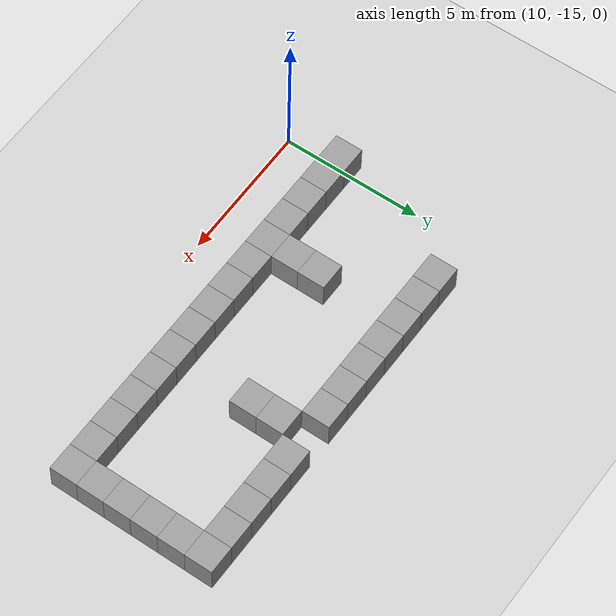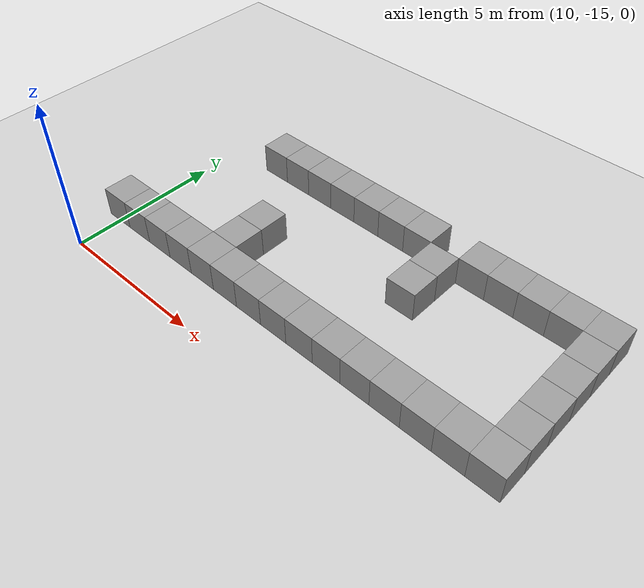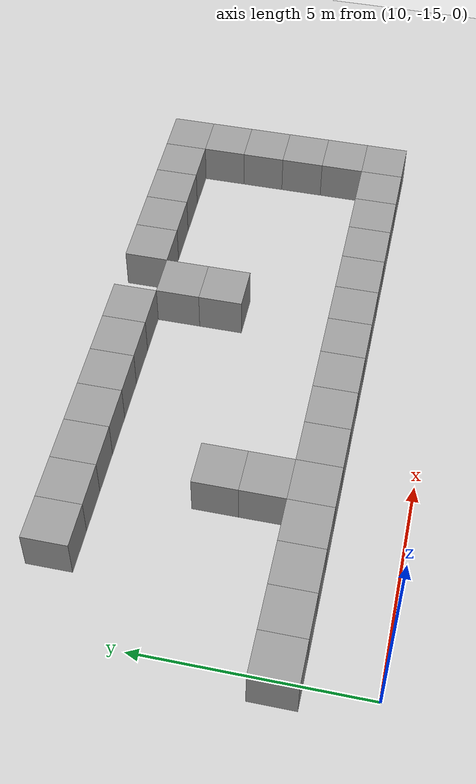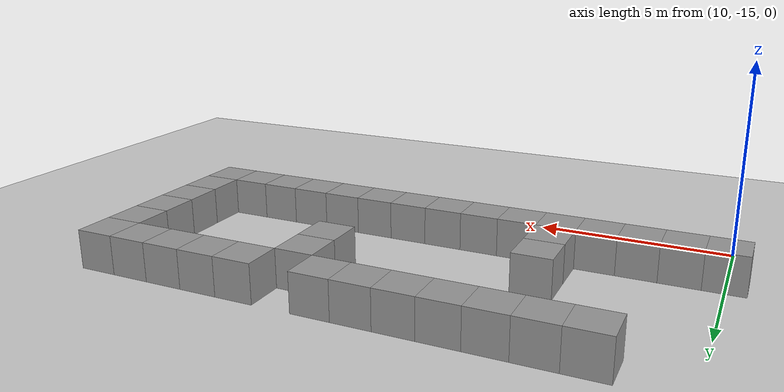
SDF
<sdf version="1.4">
 <world name="default">
  <model name="ground_plane">
   <static>1</static>
   <link name="link">
    <collision name="collision">
     <geometry><plane><normal>0 0 1</normal><size>100 100</size></plane></geometry>
     <surface><friction><ode><mu>100</mu><mu2>50</mu2></ode></friction></surface>
    </collision>
    <visual name="visual">
     <cast_shadows>0</cast_shadows>
     <geometry><plane><normal>0 0 1</normal><size>100 100</size></plane></geometry>
     <material>
      <script><uri>file://media/materials/scripts/gazebo.material</uri><name>Gazebo/Grey</name></script>
     </material>
    </visual>
    <velocity_decay><linear>0</linear><angular>0</angular></velocity_decay>
   </link>
  </model>
  <model name="unit_box_216">
   <pose>24 -8 0.5 -0 -0 -3e-06</pose>
   <link name="link">
    <inertial>
     <mass>1</mass>
     <inertia><ixx>1</ixx><ixy>0</ixy><ixz>0</ixz><iyy>1</iyy><iyz>0</iyz><izz>1</izz></inertia>
    </inertial>
    <collision name="collision"><geometry><box><size>1 1 1</size></box></geometry></collision>
    <visual name="visual">
     <geometry><box><size>1 1 1</size></box></geometry>
     <material>
      <script><uri>file://media/materials/scripts/gazebo.material</uri><name>Gazebo/Grey</name></script>
     </material>
    </visual>
    <velocity_decay><linear>0</linear><angular>0</angular></velocity_decay>
   </link>
   <static>0</static>
  </model>
  <model name="unit_box_217">
   <pose>23 -8 0.5 0 -0 0</pose>
   <link name="link">
    <inertial>
     <mass>1</mass>
     <inertia><ixx>1</ixx><ixy>0</ixy><ixz>0</ixz><iyy>1</iyy><iyz>0</iyz><izz>1</izz></inertia>
    </inertial>
    <collision name="collision"><geometry><box><size>1 1 1</size></box></geometry></collision>
    <visual name="visual">
     <geometry><box><size>1 1 1</size></box></geometry>
     <material>
      <script><uri>file://media/materials/scripts/gazebo.material</uri><name>Gazebo/Grey</name></script>
     </material>
    </visual>
    <velocity_decay><linear>0</linear><angular>0</angular></velocity_decay>
   </link>
   <static>0</static>
  </model>
  <model name="unit_box_218">
   <pose>22 -8.00001 0.5 0 0 -1e-06</pose>
   <link name="link">
    <inertial>
     <mass>1</mass>
     <inertia><ixx>1</ixx><ixy>0</ixy><ixz>0</ixz><iyy>1</iyy><iyz>0</iyz><izz>1</izz></inertia>
    </inertial>
    <collision name="collision"><geometry><box><size>1 1 1</size></box></geometry></collision>
    <visual name="visual">
     <geometry><box><size>1 1 1</size></box></geometry>
     <material>
      <script><uri>file://media/materials/scripts/gazebo.material</uri><name>Gazebo/Grey</name></script>
     </material>
    </visual>
    <velocity_decay><linear>0</linear><angular>0</angular></velocity_decay>
   </link>
   <static>0</static>
  </model>
  <model name="unit_box_219">
   <pose>21 -8 0.5 0 0 -1e-06</pose>
   <link name="link">
    <inertial>
     <mass>1</mass>
     <inertia><ixx>1</ixx><ixy>0</ixy><ixz>0</ixz><iyy>1</iyy><iyz>0</iyz><izz>1</izz></inertia>
    </inertial>
    <collision name="collision"><geometry><box><size>1 1 1</size></box></geometry></collision>
    <visual name="visual">
     <geometry><box><size>1 1 1</size></box></geometry>
     <material>
      <script><uri>file://media/materials/scripts/gazebo.material</uri><name>Gazebo/Grey</name></script>
     </material>
    </visual>
    <velocity_decay><linear>0</linear><angular>0</angular></velocity_decay>
   </link>
   <static>0</static>
  </model>
  <model name="unit_box_220">
   <pose>20 -8 0.500001 1e-06 -0 -1e-06</pose>
   <link name="link">
    <inertial>
     <mass>1</mass>
     <inertia><ixx>1</ixx><ixy>0</ixy><ixz>0</ixz><iyy>1</iyy><iyz>0</iyz><izz>1</izz></inertia>
    </inertial>
    <collision name="collision"><geometry><box><size>1 1 1</size></box></geometry></collision>
    <visual name="visual">
     <geometry><box><size>1 1 1</size></box></geometry>
     <material>
      <script><uri>file://media/materials/scripts/gazebo.material</uri><name>Gazebo/Grey</name></script>
     </material>
    </visual>
    <velocity_decay><linear>0</linear><angular>0</angular></velocity_decay>
   </link>
   <static>0</static>
  </model>
  <model name="unit_box_222">
   <pose>18 -8.00001 0.5 0 -0 -2e-06</pose>
   <link name="link">
    <inertial>
     <mass>1</mass>
     <inertia><ixx>1</ixx><ixy>0</ixy><ixz>0</ixz><iyy>1</iyy><iyz>0</iyz><izz>1</izz></inertia>
    </inertial>
    <collision name="collision"><geometry><box><size>1 1 1</size></box></geometry></collision>
    <visual name="visual">
     <geometry><box><size>1 1 1</size></box></geometry>
     <material>
      <script><uri>file://media/materials/scripts/gazebo.material</uri><name>Gazebo/Grey</name></script>
     </material>
    </visual>
    <velocity_decay><linear>0</linear><angular>0</angular></velocity_decay>
   </link>
   <static>0</static>
  </model>
  <model name="unit_box_223">
   <pose>17 -8 0.5 0 -0 1e-06</pose>
   <link name="link">
    <inertial>
     <mass>1</mass>
     <inertia><ixx>1</ixx><ixy>0</ixy><ixz>0</ixz><iyy>1</iyy><iyz>0</iyz><izz>1</izz></inertia>
    </inertial>
    <collision name="collision"><geometry><box><size>1 1 1</size></box></geometry></collision>
    <visual name="visual">
     <geometry><box><size>1 1 1</size></box></geometry>
     <material>
      <script><uri>file://media/materials/scripts/gazebo.material</uri><name>Gazebo/Grey</name></script>
     </material>
    </visual>
    <velocity_decay><linear>0</linear><angular>0</angular></velocity_decay>
   </link>
   <static>0</static>
  </model>
  <model name="unit_box_235">
   <pose>16 -7.99999 0.5 0 -0 1e-06</pose>
   <link name="link">
    <inertial>
     <mass>1</mass>
     <inertia><ixx>1</ixx><ixy>0</ixy><ixz>0</ixz><iyy>1</iyy><iyz>0</iyz><izz>1</izz></inertia>
    </inertial>
    <collision name="collision"><geometry><box><size>1 1 1</size></box></geometry></collision>
    <visual name="visual">
     <geometry><box><size>1 1 1</size></box></geometry>
     <material>
      <script><uri>file://media/materials/scripts/gazebo.material</uri><name>Gazebo/Grey</name></script>
     </material>
    </visual>
    <velocity_decay><linear>0</linear><angular>0</angular></velocity_decay>
   </link>
   <static>0</static>
  </model>
  <model name="unit_box_236">
   <pose>15 -8.00001 0.5 0 -0 1e-06</pose>
   <link name="link">
    <inertial>
     <mass>1</mass>
     <inertia><ixx>1</ixx><ixy>0</ixy><ixz>0</ixz><iyy>1</iyy><iyz>0</iyz><izz>1</izz></inertia>
    </inertial>
    <collision name="collision"><geometry><box><size>1 1 1</size></box></geometry></collision>
    <visual name="visual">
     <geometry><box><size>1 1 1</size></box></geometry>
     <material>
      <script><uri>file://media/materials/scripts/gazebo.material</uri><name>Gazebo/Grey</name></script>
     </material>
    </visual>
    <velocity_decay><linear>0</linear><angular>0</angular></velocity_decay>
   </link>
   <static>0</static>
  </model>
  <model name="unit_box_237">
   <pose>14 -8 0.5 0 -0 1e-06</pose>
   <link name="link">
    <inertial>
     <mass>1</mass>
     <inertia><ixx>1</ixx><ixy>0</ixy><ixz>0</ixz><iyy>1</iyy><iyz>0</iyz><izz>1</izz></inertia>
    </inertial>
    <collision name="collision"><geometry><box><size>1 1 1</size></box></geometry></collision>
    <visual name="visual">
     <geometry><box><size>1 1 1</size></box></geometry>
     <material>
      <script><uri>file://media/materials/scripts/gazebo.material</uri><name>Gazebo/Grey</name></script>
     </material>
    </visual>
    <velocity_decay><linear>0</linear><angular>0</angular></velocity_decay>
   </link>
   <static>0</static>
  </model>
  <model name="unit_box_238">
   <pose>13 -8 0.5 0 -0 2e-06</pose>
   <link name="link">
    <inertial>
     <mass>1</mass>
     <inertia><ixx>1</ixx><ixy>0</ixy><ixz>0</ixz><iyy>1</iyy><iyz>0</iyz><izz>1</izz></inertia>
    </inertial>
    <collision name="collision"><geometry><box><size>1 1 1</size></box></geometry></collision>
    <visual name="visual">
     <geometry><box><size>1 1 1</size></box></geometry>
     <material>
      <script><uri>file://media/materials/scripts/gazebo.material</uri><name>Gazebo/Grey</name></script>
     </material>
    </visual>
    <velocity_decay><linear>0</linear><angular>0</angular></velocity_decay>
   </link>
   <static>0</static>
  </model>
  <model name="unit_box_239">
   <pose>12 -8 0.499999 3e-06 -0 2e-06</pose>
   <link name="link">
    <inertial>
     <mass>1</mass>
     <inertia><ixx>1</ixx><ixy>0</ixy><ixz>0</ixz><iyy>1</iyy><iyz>0</iyz><izz>1</izz></inertia>
    </inertial>
    <collision name="collision"><geometry><box><size>1 1 1</size></box></geometry></collision>
    <visual name="visual">
     <geometry><box><size>1 1 1</size></box></geometry>
     <material>
      <script><uri>file://media/materials/scripts/gazebo.material</uri><name>Gazebo/Grey</name></script>
     </material>
    </visual>
    <velocity_decay><linear>0</linear><angular>0</angular></velocity_decay>
   </link>
   <static>0</static>
  </model>
  <model name="unit_box_265">
   <pose>10 -13 0.500001 2e-06 -0 -1.1e-05</pose>
   <link name="link">
    <inertial>
     <mass>1</mass>
     <inertia><ixx>1</ixx><ixy>0</ixy><ixz>0</ixz><iyy>1</iyy><iyz>0</iyz><izz>1</izz></inertia>
    </inertial>
    <collision name="collision"><geometry><box><size>1 1 1</size></box></geometry></collision>
    <visual name="visual">
     <geometry><box><size>1 1 1</size></box></geometry>
     <material>
      <script><uri>file://media/materials/scripts/gazebo.material</uri><name>Gazebo/Grey</name></script>
     </material>
    </visual>
    <velocity_decay><linear>0</linear><angular>0</angular></velocity_decay>
   </link>
   <static>0</static>
  </model>
  <model name="unit_box_266">
   <pose>11 -13 0.499992 1e-06 3.23117e-27 -8e-06</pose>
   <link name="link">
    <inertial>
     <mass>1</mass>
     <inertia><ixx>1</ixx><ixy>0</ixy><ixz>0</ixz><iyy>1</iyy><iyz>0</iyz><izz>1</izz></inertia>
    </inertial>
    <collision name="collision"><geometry><box><size>1 1 1</size></box></geometry></collision>
    <visual name="visual">
     <geometry><box><size>1 1 1</size></box></geometry>
     <material>
      <script><uri>file://media/materials/scripts/gazebo.material</uri><name>Gazebo/Grey</name></script>
     </material>
    </visual>
    <velocity_decay><linear>0</linear><angular>0</angular></velocity_decay>
   </link>
   <static>0</static>
  </model>
  <model name="unit_box_267">
   <pose>12 -13 0.5 0 0 -8e-06</pose>
   <link name="link">
    <inertial>
     <mass>1</mass>
     <inertia><ixx>1</ixx><ixy>0</ixy><ixz>0</ixz><iyy>1</iyy><iyz>0</iyz><izz>1</izz></inertia>
    </inertial>
    <collision name="collision"><geometry><box><size>1 1 1</size></box></geometry></collision>
    <visual name="visual">
     <geometry><box><size>1 1 1</size></box></geometry>
     <material>
      <script><uri>file://media/materials/scripts/gazebo.material</uri><name>Gazebo/Grey</name></script>
     </material>
    </visual>
    <velocity_decay><linear>0</linear><angular>0</angular></velocity_decay>
   </link>
   <static>0</static>
  </model>
  <model name="unit_box_268">
   <pose>13 -13 0.500001 1e-06 8.07794e-28 -7e-06</pose>
   <link name="link">
    <inertial>
     <mass>1</mass>
     <inertia><ixx>1</ixx><ixy>0</ixy><ixz>0</ixz><iyy>1</iyy><iyz>0</iyz><izz>1</izz></inertia>
    </inertial>
    <collision name="collision"><geometry><box><size>1 1 1</size></box></geometry></collision>
    <visual name="visual">
     <geometry><box><size>1 1 1</size></box></geometry>
     <material>
      <script><uri>file://media/materials/scripts/gazebo.material</uri><name>Gazebo/Grey</name></script>
     </material>
    </visual>
    <velocity_decay><linear>0</linear><angular>0</angular></velocity_decay>
   </link>
   <static>0</static>
  </model>
  <model name="unit_box_269">
   <pose>14 -13 0.5 -0 -0 -1e-05</pose>
   <link name="link">
    <inertial>
     <mass>1</mass>
     <inertia><ixx>1</ixx><ixy>0</ixy><ixz>0</ixz><iyy>1</iyy><iyz>0</iyz><izz>1</izz></inertia>
    </inertial>
    <collision name="collision"><geometry><box><size>1 1 1</size></box></geometry></collision>
    <visual name="visual">
     <geometry><box><size>1 1 1</size></box></geometry>
     <material>
      <script><uri>file://media/materials/scripts/gazebo.material</uri><name>Gazebo/Grey</name></script>
     </material>
    </visual>
    <velocity_decay><linear>0</linear><angular>0</angular></velocity_decay>
   </link>
   <static>0</static>
  </model>
  <model name="unit_box_270">
   <pose>14 -12 0.5 0 -0 -1e-05</pose>
   <link name="link">
    <inertial>
     <mass>1</mass>
     <inertia><ixx>1</ixx><ixy>0</ixy><ixz>0</ixz><iyy>1</iyy><iyz>0</iyz><izz>1</izz></inertia>
    </inertial>
    <collision name="collision"><geometry><box><size>1 1 1</size></box></geometry></collision>
    <visual name="visual">
     <geometry><box><size>1 1 1</size></box></geometry>
     <material>
      <script><uri>file://media/materials/scripts/gazebo.material</uri><name>Gazebo/Grey</name></script>
     </material>
    </visual>
    <velocity_decay><linear>0</linear><angular>0</angular></velocity_decay>
   </link>
   <static>0</static>
  </model>
  <model name="unit_box_271">
   <pose>19 -9 0.5 -0 -0 -4e-06</pose>
   <link name="link">
    <inertial>
     <mass>1</mass>
     <inertia><ixx>1</ixx><ixy>0</ixy><ixz>0</ixz><iyy>1</iyy><iyz>0</iyz><izz>1</izz></inertia>
    </inertial>
    <collision name="collision"><geometry><box><size>1 1 1</size></box></geometry></collision>
    <visual name="visual">
     <geometry><box><size>1 1 1</size></box></geometry>
     <material>
      <script><uri>file://media/materials/scripts/gazebo.material</uri><name>Gazebo/Grey</name></script>
     </material>
    </visual>
    <velocity_decay><linear>0</linear><angular>0</angular></velocity_decay>
   </link>
   <static>0</static>
  </model>
  <model name="unit_box_272">
   <pose>19 -10 0.5 0 0 -5e-06</pose>
   <link name="link">
    <inertial>
     <mass>1</mass>
     <inertia><ixx>1</ixx><ixy>0</ixy><ixz>0</ixz><iyy>1</iyy><iyz>0</iyz><izz>1</izz></inertia>
    </inertial>
    <collision name="collision"><geometry><box><size>1 1 1</size></box></geometry></collision>
    <visual name="visual">
     <geometry><box><size>1 1 1</size></box></geometry>
     <material>
      <script><uri>file://media/materials/scripts/gazebo.material</uri><name>Gazebo/Grey</name></script>
     </material>
    </visual>
    <velocity_decay><linear>0</linear><angular>0</angular></velocity_decay>
   </link>
   <static>0</static>
  </model>
  <model name="unit_box_273">
   <pose>14 -11 0.5 -0 -0 -1e-05</pose>
   <link name="link">
    <inertial>
     <mass>1</mass>
     <inertia><ixx>1</ixx><ixy>0</ixy><ixz>0</ixz><iyy>1</iyy><iyz>0</iyz><izz>1</izz></inertia>
    </inertial>
    <collision name="collision"><geometry><box><size>1 1 1</size></box></geometry></collision>
    <visual name="visual">
     <geometry><box><size>1 1 1</size></box></geometry>
     <material>
      <script><uri>file://media/materials/scripts/gazebo.material</uri><name>Gazebo/Grey</name></script>
     </material>
    </visual>
    <velocity_decay><linear>0</linear><angular>0</angular></velocity_decay>
   </link>
   <static>0</static>
  </model>
  <model name="unit_box_274">
   <pose>24 -9 0.5 -0 -0 -6e-06</pose>
   <link name="link">
    <inertial>
     <mass>1</mass>
     <inertia><ixx>1</ixx><ixy>0</ixy><ixz>0</ixz><iyy>1</iyy><iyz>0</iyz><izz>1</izz></inertia>
    </inertial>
    <collision name="collision"><geometry><box><size>1 1 1</size></box></geometry></collision>
    <visual name="visual">
     <geometry><box><size>1 1 1</size></box></geometry>
     <material>
      <script><uri>file://media/materials/scripts/gazebo.material</uri><name>Gazebo/Grey</name></script>
     </material>
    </visual>
    <velocity_decay><linear>0</linear><angular>0</angular></velocity_decay>
   </link>
   <static>0</static>
  </model>
  <model name="unit_box_275">
   <pose>24 -10 0.5 -0 -0 -6e-06</pose>
   <link name="link">
    <inertial>
     <mass>1</mass>
     <inertia><ixx>1</ixx><ixy>0</ixy><ixz>0</ixz><iyy>1</iyy><iyz>0</iyz><izz>1</izz></inertia>
    </inertial>
    <collision name="collision"><geometry><box><size>1 1 1</size></box></geometry></collision>
    <visual name="visual">
     <geometry><box><size>1 1 1</size></box></geometry>
     <material>
      <script><uri>file://media/materials/scripts/gazebo.material</uri><name>Gazebo/Grey</name></script>
     </material>
    </visual>
    <velocity_decay><linear>0</linear><angular>0</angular></velocity_decay>
   </link>
   <static>0</static>
  </model>
  <model name="unit_box_276">
   <pose>24 -11 0.5 0 0 -4e-06</pose>
   <link name="link">
    <inertial>
     <mass>1</mass>
     <inertia><ixx>1</ixx><ixy>0</ixy><ixz>0</ixz><iyy>1</iyy><iyz>0</iyz><izz>1</izz></inertia>
    </inertial>
    <collision name="collision"><geometry><box><size>1 1 1</size></box></geometry></collision>
    <visual name="visual">
     <geometry><box><size>1 1 1</size></box></geometry>
     <material>
      <script><uri>file://media/materials/scripts/gazebo.material</uri><name>Gazebo/Grey</name></script>
     </material>
    </visual>
    <velocity_decay><linear>0</linear><angular>0</angular></velocity_decay>
   </link>
   <static>0</static>
  </model>
  <model name="unit_box_277">
   <pose>24 -12 0.5 0 0 -4e-06</pose>
   <link name="link">
    <inertial>
     <mass>1</mass>
     <inertia><ixx>1</ixx><ixy>0</ixy><ixz>0</ixz><iyy>1</iyy><iyz>0</iyz><izz>1</izz></inertia>
    </inertial>
    <collision name="collision"><geometry><box><size>1 1 1</size></box></geometry></collision>
    <visual name="visual">
     <geometry><box><size>1 1 1</size></box></geometry>
     <material>
      <script><uri>file://media/materials/scripts/gazebo.material</uri><name>Gazebo/Grey</name></script>
     </material>
    </visual>
    <velocity_decay><linear>0</linear><angular>0</angular></velocity_decay>
   </link>
   <static>0</static>
  </model>
  <model name="unit_box_278">
   <pose>15 -13 0.499998 -1e-06 5e-06 -1e-05</pose>
   <link name="link">
    <inertial>
     <mass>1</mass>
     <inertia><ixx>1</ixx><ixy>0</ixy><ixz>0</ixz><iyy>1</iyy><iyz>0</iyz><izz>1</izz></inertia>
    </inertial>
    <collision name="collision"><geometry><box><size>1 1 1</size></box></geometry></collision>
    <visual name="visual">
     <geometry><box><size>1 1 1</size></box></geometry>
     <material>
      <script><uri>file://media/materials/scripts/gazebo.material</uri><name>Gazebo/Grey</name></script>
     </material>
    </visual>
    <velocity_decay><linear>0</linear><angular>0</angular></velocity_decay>
   </link>
   <static>0</static>
  </model>
  <model name="unit_box_279">
   <pose>16 -13 0.49999 0 0 -1e-05</pose>
   <link name="link">
    <inertial>
     <mass>1</mass>
     <inertia><ixx>1</ixx><ixy>0</ixy><ixz>0</ixz><iyy>1</iyy><iyz>0</iyz><izz>1</izz></inertia>
    </inertial>
    <collision name="collision"><geometry><box><size>1 1 1</size></box></geometry></collision>
    <visual name="visual">
     <geometry><box><size>1 1 1</size></box></geometry>
     <material>
      <script><uri>file://media/materials/scripts/gazebo.material</uri><name>Gazebo/Grey</name></script>
     </material>
    </visual>
    <velocity_decay><linear>0</linear><angular>0</angular></velocity_decay>
   </link>
   <static>0</static>
  </model>
  <model name="unit_box_280">
   <pose>17 -13 0.5 -1e-06 1.61559e-27 -1.1e-05</pose>
   <link name="link">
    <inertial>
     <mass>1</mass>
     <inertia><ixx>1</ixx><ixy>0</ixy><ixz>0</ixz><iyy>1</iyy><iyz>0</iyz><izz>1</izz></inertia>
    </inertial>
    <collision name="collision"><geometry><box><size>1 1 1</size></box></geometry></collision>
    <visual name="visual">
     <geometry><box><size>1 1 1</size></box></geometry>
     <material>
      <script><uri>file://media/materials/scripts/gazebo.material</uri><name>Gazebo/Grey</name></script>
     </material>
    </visual>
    <velocity_decay><linear>0</linear><angular>0</angular></velocity_decay>
   </link>
   <static>0</static>
  </model>
  <model name="unit_box_281">
   <pose>18 -13 0.5 0 -0 -1.1e-05</pose>
   <link name="link">
    <inertial>
     <mass>1</mass>
     <inertia><ixx>1</ixx><ixy>0</ixy><ixz>0</ixz><iyy>1</iyy><iyz>0</iyz><izz>1</izz></inertia>
    </inertial>
    <collision name="collision"><geometry><box><size>1 1 1</size></box></geometry></collision>
    <visual name="visual">
     <geometry><box><size>1 1 1</size></box></geometry>
     <material>
      <script><uri>file://media/materials/scripts/gazebo.material</uri><name>Gazebo/Grey</name></script>
     </material>
    </visual>
    <velocity_decay><linear>0</linear><angular>0</angular></velocity_decay>
   </link>
   <static>0</static>
  </model>
  <model name="unit_box_282">
   <pose>19 -13 0.5 -0 -0 -9e-06</pose>
   <link name="link">
    <inertial>
     <mass>1</mass>
     <inertia><ixx>1</ixx><ixy>0</ixy><ixz>0</ixz><iyy>1</iyy><iyz>0</iyz><izz>1</izz></inertia>
    </inertial>
    <collision name="collision"><geometry><box><size>1 1 1</size></box></geometry></collision>
    <visual name="visual">
     <geometry><box><size>1 1 1</size></box></geometry>
     <material>
      <script><uri>file://media/materials/scripts/gazebo.material</uri><name>Gazebo/Grey</name></script>
     </material>
    </visual>
    <velocity_decay><linear>0</linear><angular>0</angular></velocity_decay>
   </link>
   <static>0</static>
  </model>
  <model name="unit_box_283">
   <pose>20 -13 0.5 0 0 -9e-06</pose>
   <link name="link">
    <inertial>
     <mass>1</mass>
     <inertia><ixx>1</ixx><ixy>0</ixy><ixz>0</ixz><iyy>1</iyy><iyz>0</iyz><izz>1</izz></inertia>
    </inertial>
    <collision name="collision"><geometry><box><size>1 1 1</size></box></geometry></collision>
    <visual name="visual">
     <geometry><box><size>1 1 1</size></box></geometry>
     <material>
      <script><uri>file://media/materials/scripts/gazebo.material</uri><name>Gazebo/Grey</name></script>
     </material>
    </visual>
    <velocity_decay><linear>0</linear><angular>0</angular></velocity_decay>
   </link>
   <static>0</static>
  </model>
  <model name="unit_box_284">
   <pose>21 -13 0.5 0 0 -6e-06</pose>
   <link name="link">
    <inertial>
     <mass>1</mass>
     <inertia><ixx>1</ixx><ixy>0</ixy><ixz>0</ixz><iyy>1</iyy><iyz>0</iyz><izz>1</izz></inertia>
    </inertial>
    <collision name="collision"><geometry><box><size>1 1 1</size></box></geometry></collision>
    <visual name="visual">
     <geometry><box><size>1 1 1</size></box></geometry>
     <material>
      <script><uri>file://media/materials/scripts/gazebo.material</uri><name>Gazebo/Grey</name></script>
     </material>
    </visual>
    <velocity_decay><linear>0</linear><angular>0</angular></velocity_decay>
   </link>
   <static>0</static>
  </model>
  <model name="unit_box_285">
   <pose>22 -13 0.5 1e-06 -0 -6e-06</pose>
   <link name="link">
    <inertial>
     <mass>1</mass>
     <inertia><ixx>1</ixx><ixy>0</ixy><ixz>0</ixz><iyy>1</iyy><iyz>0</iyz><izz>1</izz></inertia>
    </inertial>
    <collision name="collision"><geometry><box><size>1 1 1</size></box></geometry></collision>
    <visual name="visual">
     <geometry><box><size>1 1 1</size></box></geometry>
     <material>
      <script><uri>file://media/materials/scripts/gazebo.material</uri><name>Gazebo/Grey</name></script>
     </material>
    </visual>
    <velocity_decay><linear>0</linear><angular>0</angular></velocity_decay>
   </link>
   <static>0</static>
  </model>
  <model name="unit_box_286">
   <pose>23 -13 0.5 0 -0 -6e-06</pose>
   <link name="link">
    <inertial>
     <mass>1</mass>
     <inertia><ixx>1</ixx><ixy>0</ixy><ixz>0</ixz><iyy>1</iyy><iyz>0</iyz><izz>1</izz></inertia>
    </inertial>
    <collision name="collision"><geometry><box><size>1 1 1</size></box></geometry></collision>
    <visual name="visual">
     <geometry><box><size>1 1 1</size></box></geometry>
     <material>
      <script><uri>file://media/materials/scripts/gazebo.material</uri><name>Gazebo/Grey</name></script>
     </material>
    </visual>
    <velocity_decay><linear>0</linear><angular>0</angular></velocity_decay>
   </link>
   <static>0</static>
  </model>
  <model name="unit_box_287">
   <pose>24 -13 0.5 -0 -0 -5e-06</pose>
   <link name="link">
    <inertial>
     <mass>1</mass>
     <inertia><ixx>1</ixx><ixy>0</ixy><ixz>0</ixz><iyy>1</iyy><iyz>0</iyz><izz>1</izz></inertia>
    </inertial>
    <collision name="collision"><geometry><box><size>1 1 1</size></box></geometry></collision>
    <visual name="visual">
     <geometry><box><size>1 1 1</size></box></geometry>
     <material>
      <script><uri>file://media/materials/scripts/gazebo.material</uri><name>Gazebo/Grey</name></script>
     </material>
    </visual>
    <velocity_decay><linear>0</linear><angular>0</angular></velocity_decay>
   </link>
   <static>0</static>
  </model>
 </world>
</sdf>
